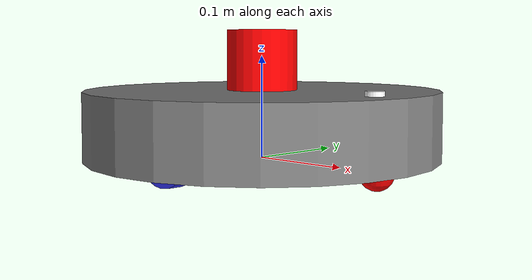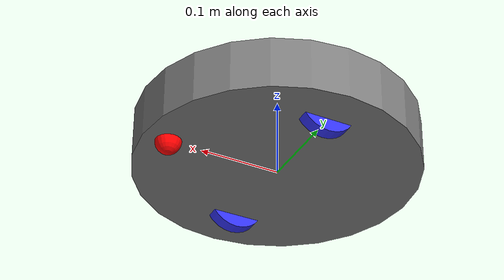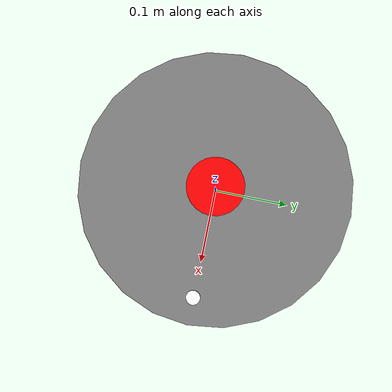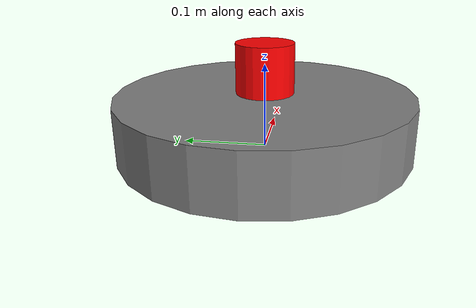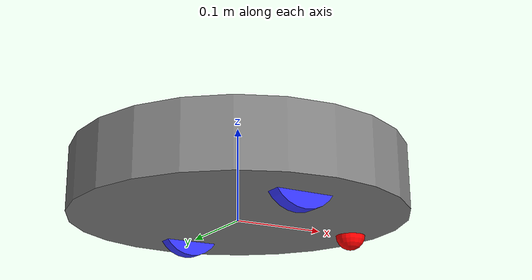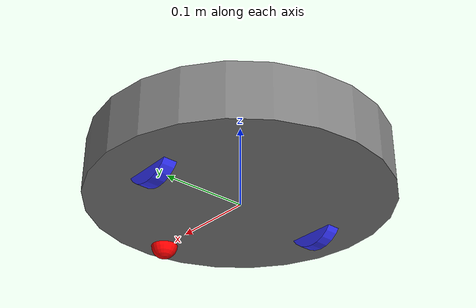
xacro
<?xml version="1.0"?>
<robot xmlns:xacro="http://www.ros.org/wiki/xacro"  name="robot">

    <xacro:arg name="use_ros2_control" default="true"/>

    <xacro:include filename="roomba.urdf.xacro" />

    <xacro:if value="$(arg use_ros2_control)">
        <xacro:include filename="ros2_control.xacro" />
    </xacro:if>
    <xacro:unless value="$(arg use_ros2_control)">
        <xacro:include filename="gazebo_control.xacro" />
    </xacro:unless>
    <xacro:include filename="lidar.xacro" />

</robot>

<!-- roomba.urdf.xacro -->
<robot xmlns:xacro="http://www.ros.org/wiki/xacro">

    <xacro:include filename="inertial_macros.xacro" />

    <!-- Adding the colors of the robot's components -->

    <material name="gray">
        <color rgba="0.5 0.5 0.5 1" />
    </material>

    <material name="blue">
        <color rgba="0.2 0.2 1.0 1.0" />
    </material>

    <material name="red">
        <color rgba="1 0 0 1" />
    </material>

    <material name="white">
        <color rgba="1 1 1 1" />
    </material>

    <!-- Creating base_link -->

    <link name="base_link">

    </link>

    <!-- Creating one joint for the unite the base_link to the chassis_link -->
    <joint name="chassis_joint" type="fixed">
        <parent link="base_link" />
        <child link="chassis_link" />
        <origin xyz="-0.17425 0.0 0.0" />
    </joint>

    <!-- Creating the properties of the chassis -->
    <link name="chassis_link">
        <visual>
            <origin xyz="0.17425 0.0 0.03347" />
            <geometry>
                <cylinder radius="0.17425" length="0.06694" />
            </geometry>
            <material name="gray" />
        </visual>
        <collision>
            <origin xyz="0.17425 0.0 0.03347" />
            <geometry>
                <cylinder radius="0.17425" length="0.06694" />
            </geometry>
        </collision>
        <xacro:inertial_cylinder mass="1.49" length="0.06694" radius="0.17425">
            <origin xyz="0.17425 0.0 0.03347" rpy="0.0 0.0 0.0" />
        </xacro:inertial_cylinder>
    </link>
    <gazebo reference="chassis_link">
        <material>Gazebo/Gray</material>
    </gazebo>

    <!-- Creating the joint of the left wheel -->
    <joint name="left_wheel_joint" type="continuous">
        <parent link="base_link" />
        <child link="left_wheel_link" />
        <origin xyz="0.0 0.1175 0.02" rpy="-${pi/2} 0.0 0.0" />
        <axis xyz="0.0 0.0 1.0" />
    </joint>

    <!-- Creating the properties of the left wheel -->
    <link name="left_wheel_link">
        <visual>
            <geometry>
                <cylinder radius="0.036" length="0.016" />
            </geometry>
            <material name="blue" />
        </visual>
        <collision>
            <geometry>
                <sphere radius="0.036" />
            </geometry>
        </collision>
        <xacro:inertial_cylinder mass="0.5" length="0.016" radius="0.036">
            <origin xyz="0.0 0.0 0.0" rpy="0.0 0.0 0.0" />
        </xacro:inertial_cylinder>
    </link>
    <gazebo reference="left_wheel_link">
        <material>Gazebo/Blue</material>
    </gazebo>

    <!-- Creating the joint of the right wheel -->
    <joint name="right_wheel_joint" type="continuous">
        <parent link="base_link" />
        <child link="right_wheel_link" />
        <origin xyz="0.0 -0.1175 0.02" rpy="${pi/2} 0.0 0.0" />
        <axis xyz="0.0 0.0 -1.0" />
    </joint>

    <!-- Creating the properties of the left wheel -->
    <link name="right_wheel_link">
        <visual>
            <geometry>
                <cylinder radius="0.036" length="0.016" />
            </geometry>
            <material name="blue" />
        </visual>
        <collision>
            <geometry>
                <sphere radius="0.036" />
            </geometry>
        </collision>
        <xacro:inertial_cylinder mass="0.5" length="0.016" radius="0.036">
            <origin xyz="0.0 0.0 0.0" rpy="0.0 0.0 0.0" />
        </xacro:inertial_cylinder>
    </link>
    <gazebo reference="right_wheel_link">
        <material>Gazebo/Blue</material>
    </gazebo>

    <!-- Creating the joint of the caster wheel -->
    <joint name="caster_wheel_joint" type="fixed">
        <parent link="base_link" />
        <child link="caster_wheel_link" />
        <origin xyz="0.142 0.0 0.0" />
    </joint>

    <!-- Creating the properties of the caster wheel -->
    <link name="caster_wheel_link">
        <visual>
            <geometry>
                <sphere radius="0.016" />
            </geometry>
            <material name="red" />
        </visual>
        <collision>
            <geometry>
                <sphere radius="0.016" />
            </geometry>
        </collision>
        <xacro:inertial_sphere mass="1.0" radius="0.016">
            <origin xyz="0.0 0.0 0.0" rpy="0.0 0.0 0.0" />
        </xacro:inertial_sphere>
    </link>
    <gazebo reference="caster_wheel_link">
        <material>Gazebo/Red</material>
        <mu1 value="0.001" />
        <mu2 value="0.001" />
    </gazebo>

    <!-- Creating the identificator to the front -->
    <joint name="identificator_joint" type="fixed">
        <parent link="base_link" />
        <child link="identificator_link" />
        <origin xyz="0.139 0.0 0.06694" />
    </joint>

    <!-- Creating the properties of the identificator -->
    <link name="identificator_link">
        <visual>
            <material name="white" />
            <geometry>
                <cylinder radius="0.009" length="0.00931" />
            </geometry>
        </visual>
        <collision>
            <geometry>
                <cylinder radius="0.009" length="0.00931" />
            </geometry>
        </collision>
        <xacro:inertial_cylinder mass="0.01" length="0.00931" radius="0.009">
            <origin xyz="0.0 0.0 0.0" rpy="0.0 0.0 0.0" />
        </xacro:inertial_cylinder>
        <gazebo reference="identificator_link">
            <material>Gazebo/White</material>
        </gazebo>
    </link>
</robot>

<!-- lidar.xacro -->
<robot xmlns:xacro="http://www.ros.org/wiki/xacro">

    <!-- Creating the joint for LIDAR -->
    <joint name="laser_joint" type="fixed">
        <parent link="chassis_link"/>
        <child link="laser_frame"/>
        <origin xyz="0.17425 0.0 0.09634" rpy="0.0 0.0 0.0"/>
    </joint>

    <!-- Adding LIDAR properties -->
    <link name="laser_frame">
        <visual>
            <geometry>
                <cylinder radius="0.0343" length="0.0588" />
            </geometry>
            <material name="red" />
        </visual>
        <collision>
            <geometry>
                <cylinder radius="0.0343" length="0.0588" />
            </geometry>
        </collision>
        <xacro:inertial_cylinder mass="0.5" length="0.0588" radius="0.0343">
            <origin xyz="0.0 0.0 0.0" rpy="0.0 0.0 0.0" />
        </xacro:inertial_cylinder>
    </link>
    <gazebo reference="laser_frame">
        <material>Gazebo/Red</material>
        <!-- Creating a sensor with the name laser and the type ray -->
        <sensor name="laser" type="ray">
            <!-- Here we are adding the starting position as the origin and no initial rotation -->
            <pose> 0 0 0 0 0 0 </pose>
            <!-- This is where the graphical representation of the sensor is enabled, which corresponds to a virtual light beam, starting from the LIDAR and interacting with objects in the world -->
            <visualize>true</visualize>
            <!-- Here you set the sensor update rate to 10 times per second -->
            <update_rate>10</update_rate>
            <ray>
                <!-- Here you add sensor properties to the Gazebo -->
                <scan>
                    <horizontal> <!-- This indicates that the laser is propagating horizontally -->
                        <samples>360</samples> <!-- Here you define the number of points (samples) that the sensor will pick up -->
                        <min_angle>-3.14</min_angle>
                        <max_angle>3.14</max_angle>
                    </horizontal>
                </scan>
                <range> <!-- We will now describe the sensor's reading characteristics -->
                    <min>0.3</min> <!-- Minimum detection distance -->
                    <max>12</max> <!-- Maximum detection distance -->
                </range>
            </ray>
            <!-- Here we create a plugin, which is responsible for picking up the sensor outputs, connecting the information from the Gazebo to other systems, in this case ROS -->
            <plugin name="laser_controller" filename="libgazebo_ros_ray_sensor.so">
                <ros> <!-- This is where integration with ROS begins -->
                    <!-- The scan topic receives information from the sensor -->
                    <argument>~/out:=scan</argument>
                </ros>
                <!-- Type of message the sensor sends to the ROS -->
                <output_type>sensor_msgs/LaserScan</output_type>
                <frame_name>laser_frame</frame_name>
            </plugin>
        </sensor>
    </gazebo>
</robot>
